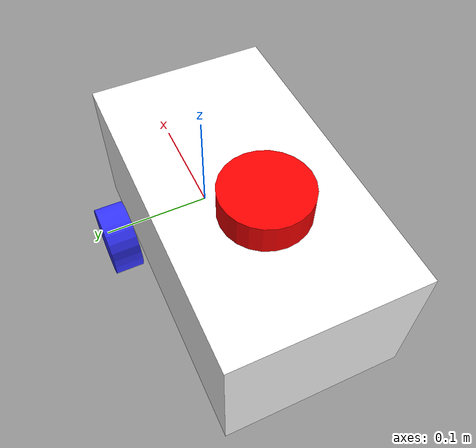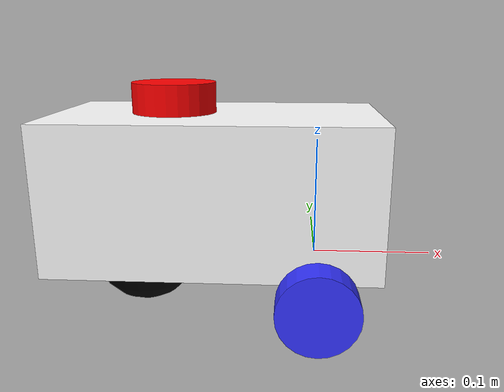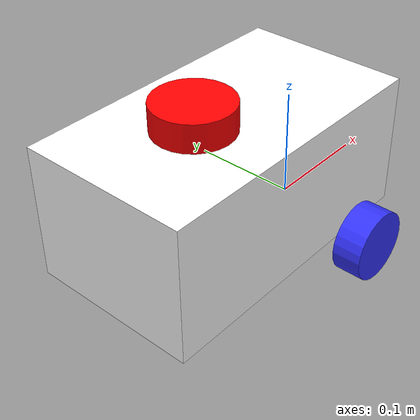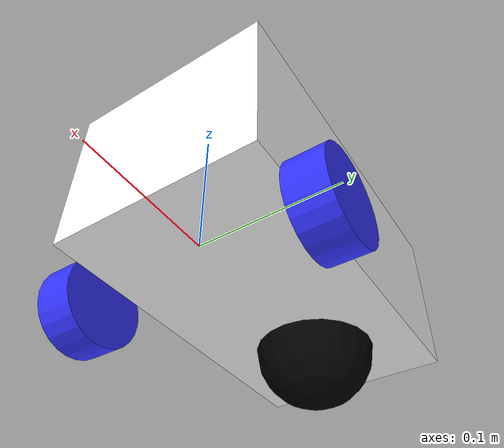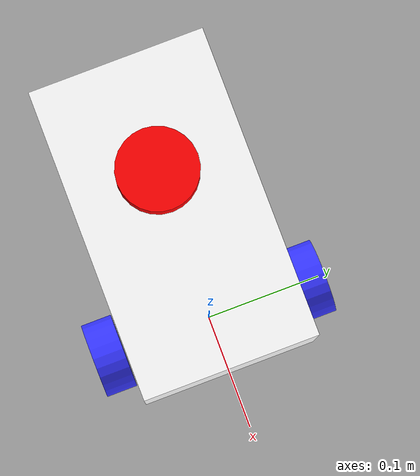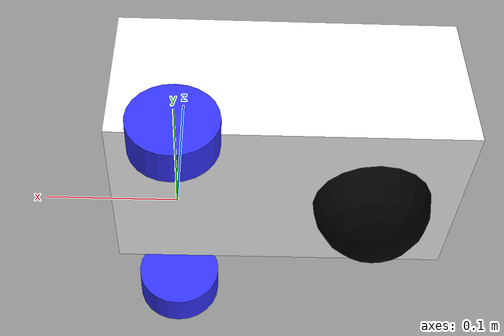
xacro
<?xml version="1.0"?>
<robot xmlns:xacro="http://www.ros.org/wiki/xacro"  name="robot">

    <xacro:include filename="chassis_core.xacro"/>

        <xacro:include filename="ros2_control.xacro"/>

</robot>

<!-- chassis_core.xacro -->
<robot xmlns:xacro="http://www.ros.org/wiki/xacro">

    <xacro:include filename="inertial_macros.xacro"/>

    <material name="white">
        <color rgba="1 1 1 1"/>
    </material>

    <material name="orange">
        <color rgba="1 0.3 0.1 1"/>
    </material>

    <material name="blue">
        <color rgba="0.2 0.2 1 1"/>
    </material>

    <material name="black">
        <color rgba="0 0 0 1"/>
    </material>

    <material name="red">
        <color rgba="1 0 0 1"/>
    </material>

    <!-- BASE LINK -->

    <link name="base_link"></link>

    <joint name="base_footprint_joint" type="fixed">
        <parent link="base_link"/>
        <child link="base_footprint"/>
        <origin xyz="0 0 0" rpy="0 0 0"/>
    </joint>

    <link name="base_footprint"></link>

    <!-- CHASSIS LINK -->

    <joint name="chassis_joint" type="fixed">
        <parent link="base_link"/>
        <child link="chassis_link"/>
        <origin xyz="0.0508 0 0" rpy="0 0 0"/> <!-- Offset the chassis slightly back by 5.08cm-->
    </joint>

    <link name="chassis_link">
        <visual>
            <origin xyz="-0.13462 0 0.06096" rpy="0 0 0"/>
            <geometry>
                <box size="0.26924 0.1524 0.12192"/>
            </geometry>
            <material name="white"/>
        </visual>
        <collision>
            <origin xyz="-0.13462 0 0.06096" rpy="0 0 0"/>
            <geometry>
                <box size="0.26924 0.1524 0.12192"/>
            </geometry>
        </collision>
        <xacro:inertial_box mass="0.5" x="0.26924" y="0.1524" z="0.12192">
            <origin xyz="-0.13462 0 0.06096" rpy="0 0 0"/>
        </xacro:inertial_box>
    </link>

    <!-- LEFT WHEEL LINK -->

    <joint name="left_wheel_joint" type="continuous">
        <parent link="base_link"/>
        <child link="left_wheel_link"/>
        <origin xyz="0 -0.09144 -0.0127" rpy="-1.5707963267948966 0 0"/> <!-- Rotate wheel -->
        <axis xyz="0 0 -1"/>
    </joint>

    <link name="left_wheel_link">
        <visual>
            <geometry>
                <cylinder radius="0.0325" length="0.027"/>
            </geometry>
            <material name="blue"/>
        </visual>
        <collision>
            <geometry>
                <cylinder radius="0.0325" length="0.027"/>
            </geometry>
        </collision>
        <xacro:inertial_cylinder mass="0.1" length="0.027" radius="0.035">
            <origin xyz="0 0 0" rpy="0 0 0"/>
        </xacro:inertial_cylinder>
    </link>

    <!-- RIGHT WHEEL LINK -->

    <joint name="right_wheel_joint" type="continuous">
        <parent link="base_link"/>
        <child link="right_wheel_link"/>
        <origin xyz="0 0.09144 -0.0127" rpy="1.5707963267948966 0 0"/> <!-- Rotate wheel -->
        <axis xyz="0 0 1"/>
    </joint>

    <link name="right_wheel_link">
        <visual>
            <geometry>
                <cylinder radius="0.0325" length="0.027"/>
            </geometry>
            <material name="blue"/>
        </visual>
        <collision>
            <geometry>
                <cylinder radius="0.0325" length="0.027"/>
            </geometry>
        </collision>
        <xacro:inertial_cylinder mass="0.1" length="0.027" radius="0.035">
            <origin xyz="0 0 0" rpy="0 0 0"/>
        </xacro:inertial_cylinder>
    </link>

    <!-- CASTER WHEEL LINK -->

    <joint name="caster_wheel_joint" type="fixed">
        <parent link="base_link"/>
        <child link="caster_wheel_link"/>
        <origin xyz="-0.15 0 0" rpy="0 0 0"/>
    </joint>

    <link name="caster_wheel_link">
        <visual>
            <geometry>
                <sphere radius="0.04572"/>
            </geometry>
            <material name="black"/>
        </visual>
        <collision>
            <geometry>
                <sphere radius="0.04572"/>
            </geometry>
            <material name="black"/>
        </collision>
        <xacro:inertial_sphere mass="0.1" radius="0.04572">
            <origin xyz="0 0 0" rpy="0 0 0"/>
        </xacro:inertial_sphere>
    </link>

    <joint name="lidar_joint" type="fixed">
        <parent link="base_link"/>
        <child link="lidar_link"/>
        <origin xyz="-0.12 0 0.13442" rpy="0 0 0"/>
    </joint>

    <link name="lidar_link">
        <visual>
            <geometry>
                <cylinder radius="0.035" length="0.025"/>
            </geometry>
            <material name="red"/>
        </visual>
        <xacro:inertial_cylinder mass="0.140" length="0.025" radius="0.035">
            <origin xyz="0 0 0" rpy="0 0 0"/>
        </xacro:inertial_cylinder>
    </link>

</robot>
